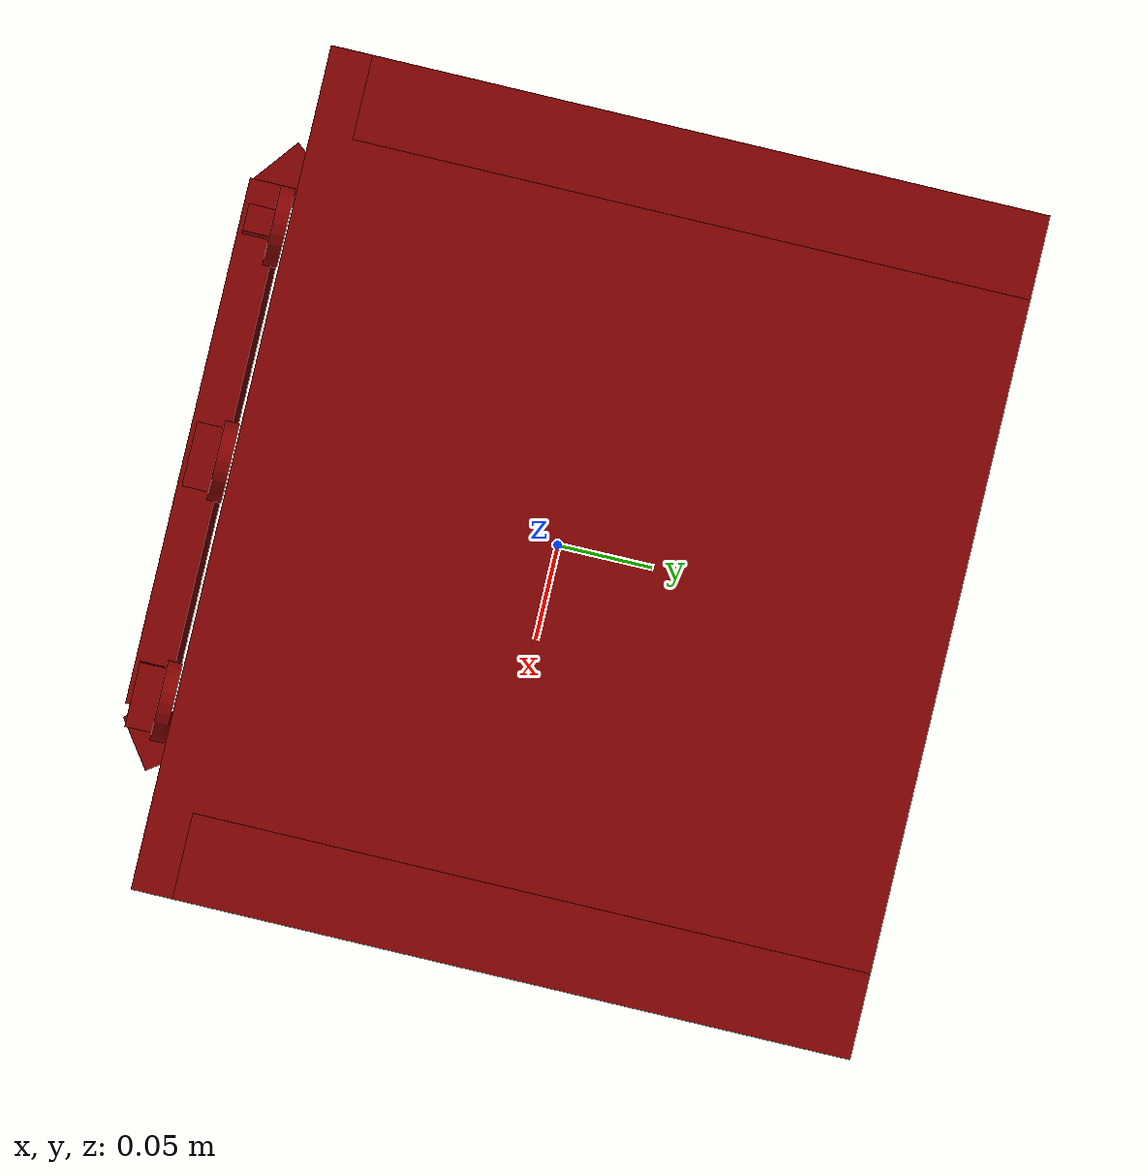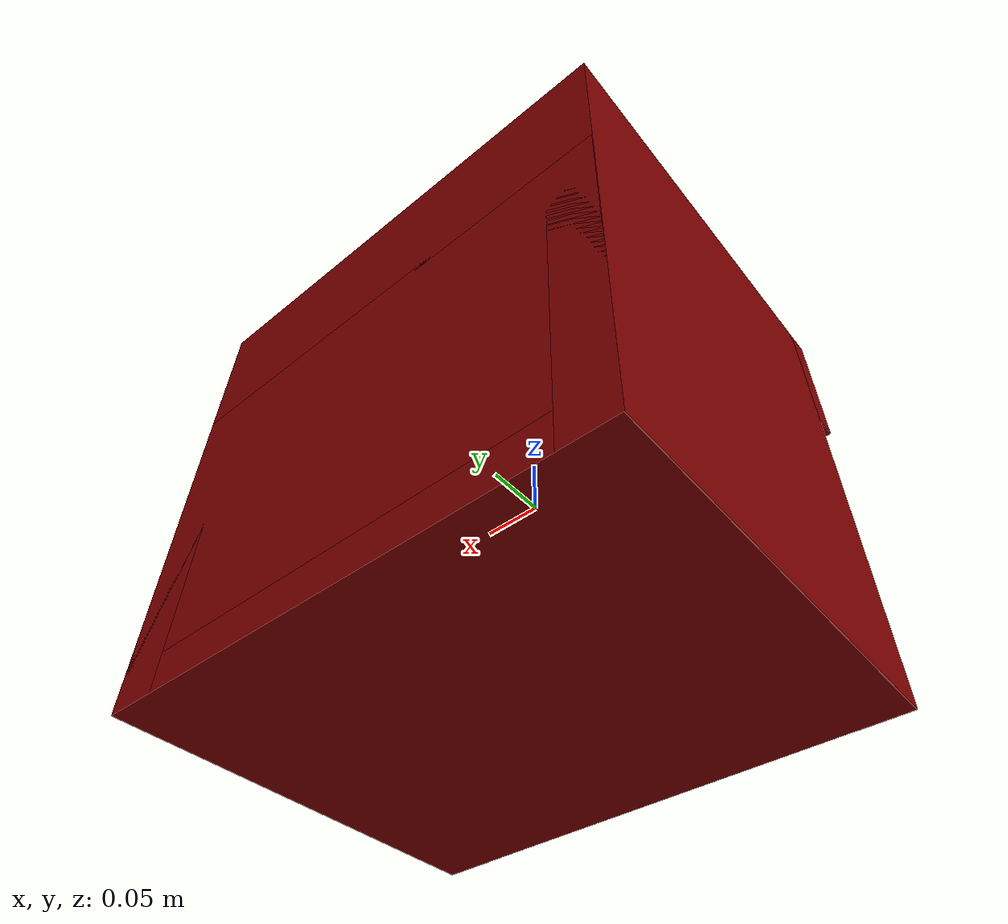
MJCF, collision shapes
<?xml version='1.0' encoding='UTF-8'?>
<mujoco model="model">
  <option timestep="0.002" gravity="0.0 0.0 -9.81"/>
  <compiler angle="radian"/>
  <asset>
    <mesh file="visuals/door.obj" name="door_vis"/>
    <mesh file="visuals/knob_function.obj" name="knob_function_vis"/>
    <mesh file="visuals/knob_temp.obj" name="knob_temp_vis"/>
    <mesh file="visuals/knob_time.obj" name="knob_time_vis"/>
    <mesh file="visuals/rack0.obj" name="rack0_vis"/>
    <mesh file="visuals/rack1.obj" name="rack1_vis"/>
    <mesh file="visuals/Body001.obj" name="Body001_vis"/>
    <mesh file="visuals/window.obj" name="window_vis"/>
    <texture file="visuals/T_BC001.png" name="Body001_material" type="2d"/>
    <material name="Body001_material" rgba="1 1 1 1.0" texture="Body001_material" shininess="0.1" specular="4"/>
    <texture file="visuals/T_BC001.png" name="door_material" type="2d"/>
    <material name="door_material" rgba="1 1 1 1.0" texture="door_material" shininess="0.1" specular="4"/>
    <material name="window_material" rgba="0.1393265575170517 0.1393265575170517 0.1393265575170517 0.800000011920929" shininess="0.141421377658844" specular="0.3103448502657381"/>
    <texture file="visuals/T_BC001.png" name="knob_function_material" type="2d"/>
    <material name="knob_function_material" rgba="1 1 1 1.0" texture="knob_function_material" shininess="0.1" specular="4"/>
    <texture file="visuals/T_BC001.png" name="knob_temp_material" type="2d"/>
    <material name="knob_temp_material" rgba="1 1 1 1.0" texture="knob_temp_material" shininess="0.1" specular="4"/>
    <texture file="visuals/T_BC001.png" name="knob_time_material" type="2d"/>
    <material name="knob_time_material" rgba="1 1 1 1.0" texture="knob_time_material" shininess="0.1" specular="4"/>
    <texture file="visuals/T_BC001.png" name="rack0_material" type="2d"/>
    <material name="rack0_material" rgba="1 1 1 1.0" texture="rack0_material" shininess="0.1" specular="4"/>
    <texture file="visuals/T_BC001.png" name="rack1_material" type="2d"/>
    <material name="rack1_material" rgba="1 1 1 1.0" texture="rack1_material" shininess="0.1" specular="4"/>
  </asset>
  <default>
    <default class="visual">
      <geom conaffinity="0" contype="0" group="1" type="mesh"/>
    </default>
    <default class="collision">
      <geom group="0" rgba="0.5 0 0 0.5"/>
    </default>
    <default class="spawn">
      <geom group="0" rgba="1 1 1 0.5" contype="0" conaffinity="0"/>
      <site group="0" rgba="1 1 1 0.5"/>
    </default>
    <default class="region">
      <geom group="1" conaffinity="0" contype="0" rgba="0 1 0 0"/>
    </default>
  </default>
  <worldbody>
    <body>
      <body name="object">
        <geom mesh="Body001_vis" type="mesh" solimp="0.998 0.998 0.001" solref="0.001 1" friction="0.95 0.3 0.1" class="visual" material="Body001_material"/>
        <geom class="collision" type="box" pos="-0.1874837875366211 0.026811806485056877 0.0" size="0.020771218463778496 0.1672239899635315 0.20594462752342224" quat="1.0 0.0 0.0 0.0"/>
        <geom class="collision" type="box" pos="0.18700549006462097 0.026811806485056877 0.0" size="0.021249497309327126 0.1672239899635315 0.20594462752342224" quat="1.0 0.0 0.0 0.0"/>
        <geom class="collision" type="box" pos="8.789356797933578e-09 0.016620097681879997 0.14449644088745117" size="0.20825499296188354 0.17741572856903076 0.06144820898771286" quat="1.0 0.0 0.0 0.0"/>
        <geom class="collision" type="box" pos="0.00025702844141051173 0.027008790522813797 -0.1787743866443634" size="0.20799796283245087 0.16702699661254883 0.027170265093445778" quat="1.0 0.0 0.0 0.0"/>
        <geom class="collision" type="box" pos="0.00025702844141051173 0.17990824580192566 -0.043512456119060516" size="0.20799796283245087 0.014127550646662712 0.1305772215127945" quat="1.0 0.0 0.0 0.0"/>
        <geom class="collision" type="box" pos="-0.000648923683911562 0.027934810146689415 0.06522655487060547" size="0.1770261526107788 0.16610097885131836 0.01704905927181244" quat="1.0 0.0 0.0 0.0"/>
        <body name="door">
          <joint axis="1.0 0.0 0.0" pos="-0.000948069675359875 -0.14243395626544952 -0.1853238195180893" limited="true" name="door_joint" range="0.0 1.4207963267948966" type="hinge" damping="1" frictionloss="1" armature=".01" stiffness="0.5" springref="-0.5"/>
          <geom mesh="door_vis" type="mesh" solimp="0.998 0.998 0.001" solref="0.001 1" friction="0.95 0.3 0.1" class="visual" material="door_material"/>
          <geom class="collision" type="box" pos="-0.17858800292015076 -0.14943307638168335 -0.05319732800126076" size="0.023277586326003075 0.003489644033834338 0.1325230598449707" quat="1.0 0.0 0.0 0.0"/>
          <geom class="collision" type="box" pos="-0.008240824565291405 -0.1842663437128067 0.0504692979156971" size="0.1365979164838791 0.010008696466684341 0.02265879698097706" quat="1.0 0.0 0.0 0.0" name="door_handle_main"/>
          <geom class="collision" type="box" pos="0.14149928092956543 -0.1769859939813614 0.0504692979156971" size="0.014707278460264206 0.010008696466684341 0.02265879698097706" quat="0.9516586661338806 0.0 0.0 0.30715760588645935"/>
          <geom class="collision" type="box" pos="-0.1499558538198471 -0.17579878866672516 0.0504692979156971" size="0.01470727939158678 0.010008696466684341 0.02265879698097706" quat="0.9452030062675476 0.0 -0.0 -0.32648321986198425"/>
          <geom class="collision" type="box" pos="0.17924343049526215 -0.14943307638168335 -0.05319732800126076" size="0.023277467116713524 0.003489644033834338 0.1325230598449707" quat="1.0 0.0 0.0 0.0"/>
          <geom class="collision" type="box" pos="-0.0008527578320354223 -0.14943307638168335 -0.1641571819782257" size="0.15587900578975677 0.0034896531142294407 0.021389998495578766" quat="1.0 0.0 0.0 0.0"/>
          <geom class="collision" type="box" pos="-0.0008527741301804781 -0.14943307638168335 0.04952442646026611" size="0.15587900578975677 0.003489648923277855 0.02327738329768181" quat="1.0 0.0 0.0 0.0" name="door_main"/>
          <body name="window">
            <geom mesh="window_vis" type="mesh" solimp="0.998 0.998 0.001" solref="0.001 1" friction="0.95 0.3 0.1" class="visual" material="window_material"/>
            <geom class="collision" type="box" pos="-0.0001274426467716694 -0.14573422074317932 -0.059385985136032104" size="0.15996190905570984 0.002195133827626705 0.08756429702043533" quat="1.0 0.0 0.0 0.0"/>
          </body>
        </body>
        <body name="knob_function">
          <joint axis="0.0 0.9932047724723816 -0.11637990176677704" pos="-0.001569606363773346 -0.17436178028583527 0.13543511927127838" limited="true" name="knob_function_joint" range="0.0 3.2288591161895095" type="hinge" damping="0.05" armature="1" frictionloss="0.75"/>
          <geom mesh="knob_function_vis" type="mesh" solimp="0.998 0.998 0.001" solref="0.001 1" friction="0.95 0.3 0.1" class="visual" material="knob_function_material"/>
          <geom class="collision" type="cylinder" pos="-0.0018204126972705126 -0.1701522320508957 0.13511914014816284" size="0.020189691334962845 0.0036164524499326944" quat="0.7346668839454651 0.6784279942512512 0.0 0.0" friction="100 0.5 0.01"/>
          <geom class="collision" type="box" pos="-0.0019121025688946247 -0.18049398064613342 0.13571631908416748" size="0.006779917515814304 0.006625317968428135 0.01627395674586296" quat="0.7065474390983582 -0.028119519352912903 0.7065474390983582 -0.028119519352912903" name="knob_function_main" friction="100 0.5 0.01"/>
        </body>
        <body name="knob_temp">
          <joint axis="0.0 0.994629442691803 -0.10349956899881363" pos="0.12010540068149567 -0.17436178028583527 0.13543511927127838" limited="true" name="knob_temp_joint" range="0.0 4.014257279586958" type="hinge" damping="0.05" armature="1" frictionloss="0.75"/>
          <geom mesh="knob_temp_vis" type="mesh" solimp="0.998 0.998 0.001" solref="0.001 1" friction="0.95 0.3 0.1" class="visual" material="knob_temp_material"/>
          <geom class="collision" type="cylinder" pos="0.12000693380832672 -0.1701522320508957 0.13511914014816284" size="0.020189691334962845 0.0036164524499326944" quat="0.7346668839454651 0.6784279942512512 0.0 0.0" friction="100 0.5 0.01"/>
          <geom class="collision" type="box" pos="0.11991524696350098 -0.18049398064613342 0.13571631908416748" size="0.006779917515814304 0.006625317968428135 0.01627395674586296" quat="0.7065474390983582 -0.028119519352912903 0.7065474390983582 -0.028119519352912903" name="knob_temp_main" friction="100 0.5 0.01"/>
        </body>
        <body name="knob_time">
          <joint axis="0.0 0.9948404431343079 -0.1014518290758133" pos="-0.12121830880641937 -0.17436178028583527 0.13543511927127838" limited="true" name="knob_time_joint" range="0.0 4.153883619746504" type="hinge" damping="0.05" armature="1" frictionloss="0.75"/>
          <geom mesh="knob_time_vis" type="mesh" solimp="0.998 0.998 0.001" solref="0.001 1" friction="0.95 0.3 0.1" class="visual" material="knob_time_material"/>
          <geom class="collision" type="cylinder" pos="-0.12118957936763763 -0.1701522320508957 0.13511914014816284" size="0.020189691334962845 0.0036164524499326944" quat="0.7346668839454651 0.6784279942512512 0.0 0.0" friction="100 0.5 0.01"/>
          <geom class="collision" type="box" pos="-0.12128126621246338 -0.18049398064613342 0.13571631908416748" size="0.006779917515814304 0.006625317968428135 0.01627395674586296" quat="0.9992089867591858 -0.039766937494277954 -0.0 0.0" name="knob_time_main" friction="100 0.5 0.01"/>
        </body>
        <body name="rack0">
          <geom class="region" name="reg_rack0" type="box" pos="-9.879469871520996e-06 0.014649167656898499 -0.05399861931800842" size="0.1624546924829483 0.12903077697753906 0.020623108208179475"/>
          <joint axis="0.0 -1.0 -1.4210856409267898e-14" pos="-0.00014749751426279545 0.013972732238471508 -0.08481291681528091" limited="true" name="rack0_joint" range="0.0 0.22" type="slide" damping="1" frictionloss="1" armature=".01" stiffness="0.05"/>
          <geom mesh="rack0_vis" type="mesh" solimp="0.998 0.998 0.001" solref="0.001 1" friction="0.95 0.3 0.1" class="visual" material="rack0_material"/>
          <geom class="collision" type="box" pos="-0.00023768586106598377 0.014588786289095879 -0.08483043313026428" size="0.16346873342990875 0.13485561311244965 0.005050330888479948" quat="1.0 0.0 0.0 0.0"/>
        </body>
        <body name="rack1">
          <geom class="region" name="reg_rack1" type="box" pos="-9.879469871520996e-06 0.014649167656898499 0.0164987756870687" size="0.1624546924829483 0.12903077697753906 0.0291004817225039"/>
          <joint axis="0.0 -1.0 -1.4210856409267898e-14" pos="-0.00014749751426279545 0.013972731307148933 -0.02170417457818985" limited="true" name="rack1_joint" range="0.0 0.22" type="slide" damping="1" frictionloss="1" armature=".01" stiffness="0.05"/>
          <geom mesh="rack1_vis" type="mesh" solimp="0.998 0.998 0.001" solref="0.001 1" friction="0.95 0.3 0.1" class="visual" material="rack1_material"/>
          <geom class="collision" type="box" pos="-0.00023768586106598377 0.014588786289095879 -0.022225288674235344" size="0.16346873342990875 0.13485561311244965 0.005155682563781738" quat="1.0 0.0 0.0 0.0"/>
        </body>
        <geom class="region" name="reg_int" type="box" pos="-0.0002674683928489685 0.013324104249477386 -0.05049426481127739" size="0.1614602262377739 0.15023178404569626 0.09609352222084999"/>
        <geom class="region" name="reg_main" type="box" pos="0.0 0.014361098408699036 0.0" size="0.20925499296188355 0.18067469990253449 0.20694464242458344"/>
      </body>
    </body>
  </worldbody>
  <actuator>
    <motor name="door_joint_actuator" joint="door_joint" gear="50"/>
    <motor name="knob_function_joint_actuator" joint="knob_function_joint" gear="50"/>
    <motor name="knob_temp_joint_actuator" joint="knob_temp_joint" gear="50"/>
    <motor name="knob_time_joint_actuator" joint="knob_time_joint" gear="50"/>
    <motor name="rack0_joint_actuator" joint="rack0_joint" gear="50"/>
    <motor name="rack1_joint_actuator" joint="rack1_joint" gear="50"/>
  </actuator>
</mujoco>
